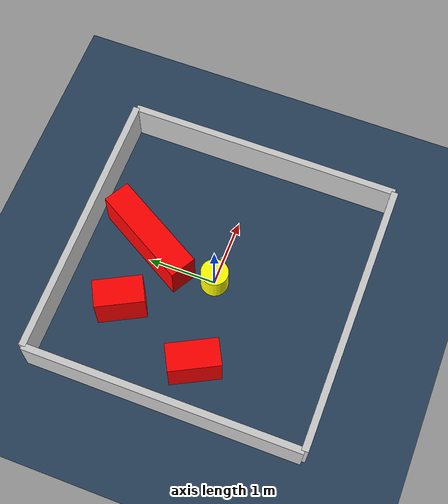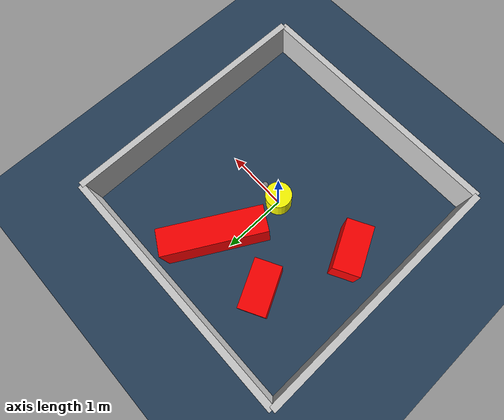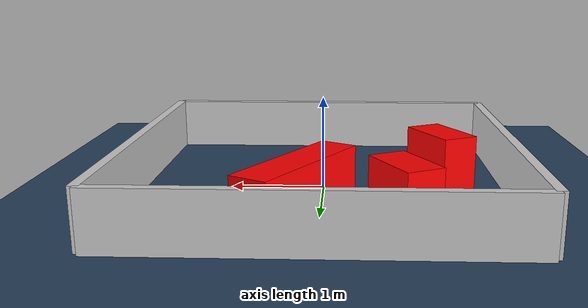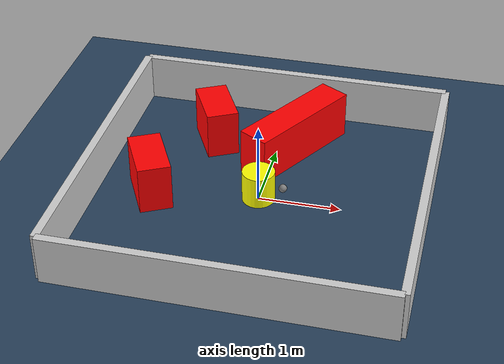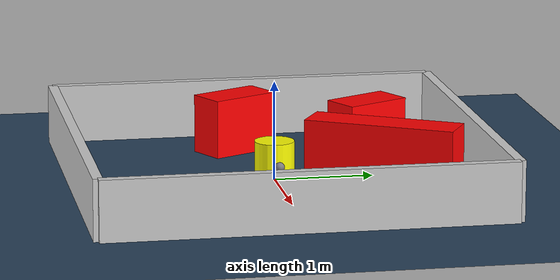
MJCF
<?xml version="1.0" ?>
<mujoco model="generated_environment">
  <option timestep="0.01" integrator="RK4" cone="elliptic"/>
  <default>
    <geom density="1"/>
  </default>
  <asset>
    <texture builtin="gradient" height="3072" rgb1="0.3 0.5 0.7" rgb2="0 0 0" type="skybox" width="512"/>
    <texture builtin="checker" height="300" mark="edge" markrgb="0.8 0.8 0.8" name="groundplane" rgb1="0.2 0.3 0.4" rgb2="0.1 0.2 0.3" type="2d" width="300"/>
    <material name="groundplane" reflectance="0.2" texrepeat="5 5" texture="groundplane" texuniform="true"/>
    <material name="robot" rgba="0.0 1.0 0.0 1"/>
  </asset>
  <worldbody>
    <light dir="0 0 -1" directional="true" pos="0 0 1.5"/>
    <geom condim="4" friction="1.0 0.005 0.001" material="groundplane" name="floor" size="0 0 0.05" type="plane"/>
    <body name="walls">
      <geom name="wall_1" condim="4" pos="-2.0 0.0 0.3" rgba="0.800000011920929 0.800000011920929 0.800000011920929 1.0" size="0.05 2.0 0.3" type="box"/>
      <geom name="wall_2" condim="4" pos="2.0 0.0 0.3" rgba="0.800000011920929 0.800000011920929 0.800000011920929 1.0" size="0.05 2.0 0.3" type="box"/>
      <geom name="wall_3" condim="4" pos="0.0 -2.0 0.3" rgba="0.800000011920929 0.800000011920929 0.800000011920929 1.0" size="2.0 0.05 0.3" type="box"/>
      <geom name="wall_4" condim="4" pos="0.0 2.0 0.3" rgba="0.800000011920929 0.800000011920929 0.800000011920929 1.0" size="2.0 0.05 0.3" type="box"/>
    </body>
    <body name="robot">
      <joint name="joint_x" type="slide" pos="0 0 0" axis="1 0 0"/>
      <joint name="joint_y" type="slide" pos="0 0 0" axis="0 1 0"/>
      <geom name="robot" type="sphere" pos="0.3 0.0 0.2" size="0.05" mass="5." friction="1.0 0.005 0.0001" condim="4" rgba="0.5 0.5 0.5 1.0"/>
      <site name="sensor_ball"/>
    </body>
    <body name="obstacle_movable_1">
      <geom name="obstacle_movable_1" condim="4" pos="0.0 0.0 0.2" euler="0 0 0.0" friction="1.0 0.005 0.001" rgba="1.0 1.0 0.0 1.0" size="0.2 0.2 0.0" type="cylinder" mass="0.1"/>
      <joint type="free"/>
    </body>
    <body name="obstacle_2_static">
      <geom name="obstacle_2_static" condim="4" pos="-0.8104296770509698 1.1043739478762766 0.3" euler="0 0 297.8468834184943" friction="1.0 0.005 0.001" rgba="1 0 0 1" size="0.3527781944645044 0.2 0.3" type="box"/>
    </body>
    <body name="obstacle_3_static">
      <geom name="obstacle_3_static" condim="4" pos="0.21230298016727667 1.0672057575909604 0.3" euler="0 0 240.08602805416666" friction="1.0 0.005 0.001" rgba="1 0 0 1" size="0.7697599837733549 0.2 0.3" type="box"/>
    </body>
    <body name="obstacle_4_static">
      <geom name="obstacle_4_static" condim="4" pos="-1.2975533227995188 -0.18723316513033206 0.3" euler="0 0 297.6359935776158" friction="1.0 0.005 0.001" rgba="1 0 0 1" size="0.36904225679246105 0.2 0.3" type="box"/>
    </body>
  </worldbody>
  <actuator>
    <motor name="actuator_x" joint="joint_x" gear="1" ctrlrange="-1 1"/>
    <motor name="actuator_y" joint="joint_y" gear="1" ctrlrange="-1 1"/>
  </actuator>
</mujoco>
